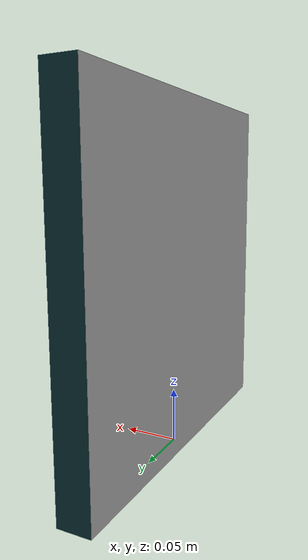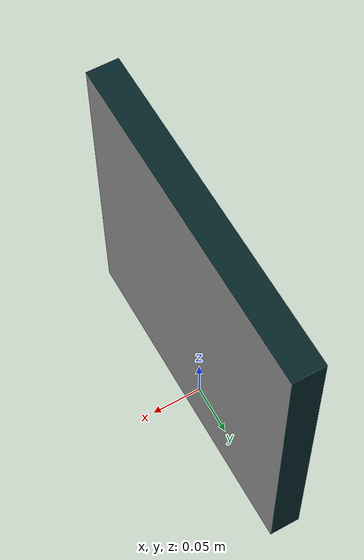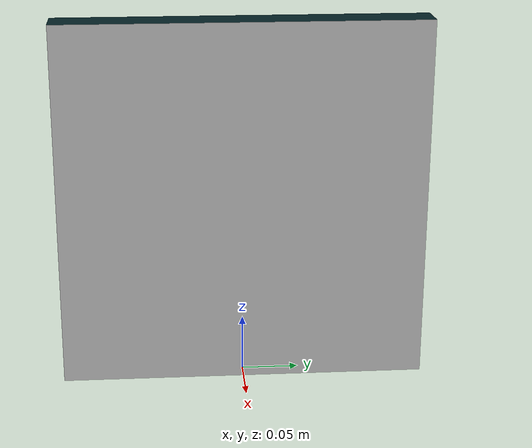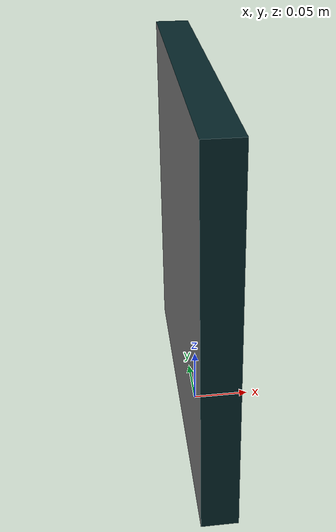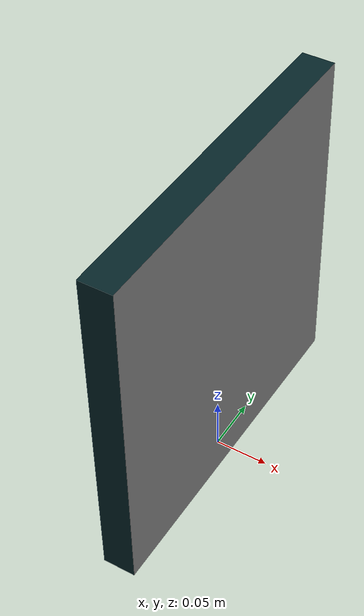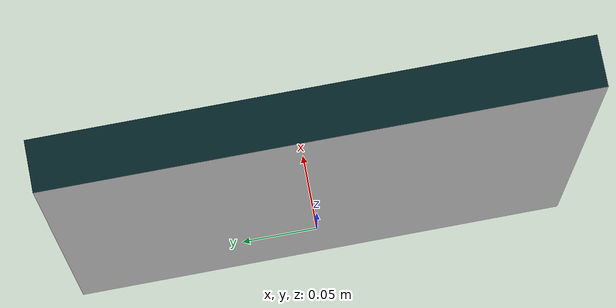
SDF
<?xml version="1.0" ?>
<sdf version="1.6">
  <model name="bicycle">
    <static>true</static>
    <link name="box">
      <pose>0 0 0 0 0 0</pose>
      <collision name="collision">
        <geometry>
          <mesh>
            <uri>model://Objetos/bicycle/materials/textures/bicycle.dae</uri>
            <scale>0.3 0.4 0.4</scale>
          </mesh>
        </geometry>
      </collision>
      <visual name="visual">
        <geometry>
          <mesh>
            <uri>model://Objetos/bicycle/materials/textures/bicycle.dae</uri>
            <scale>0.3 0.4 0.4</scale>
          </mesh>
        </geometry>
      </visual>
    </link>
  </model>
</sdf>
